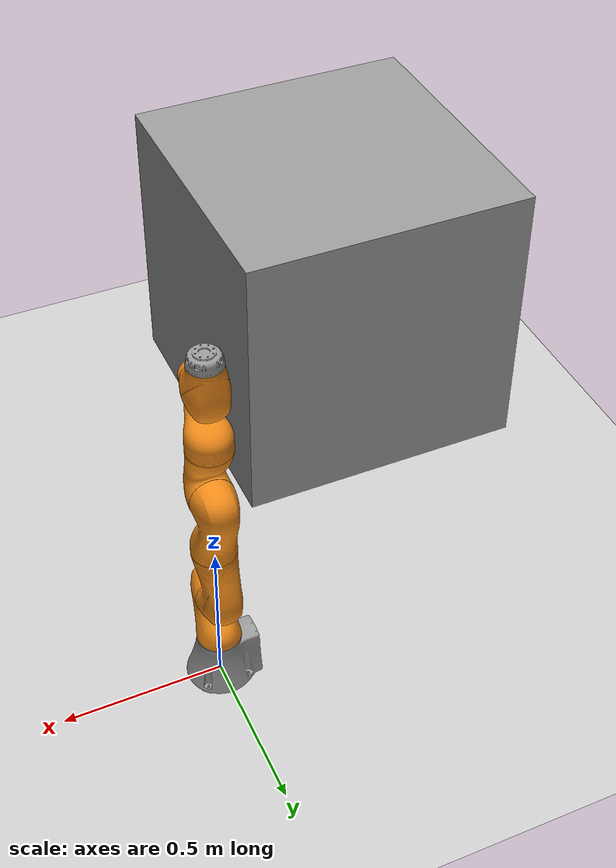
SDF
<sdf version="1.6">
 <world name="default">
  <model name="ground_plane">
   <static>1</static>
   <link name="link">
    <collision name="collision">
     <geometry><plane><normal>0 0 1</normal><size>100 100</size></plane></geometry>
     <surface><friction><ode><mu>100</mu><mu2>50</mu2></ode></friction></surface>
    </collision>
    <visual name="visual">
     <cast_shadows>0</cast_shadows>
     <geometry><plane><normal>0 0 1</normal><size>100 100</size></plane></geometry>
     <material>
      <script><uri>file://media/materials/scripts/gazebo.material</uri><name>Gazebo/Grey</name></script>
     </material>
    </visual>
   </link>
  </model>
  <light name="sun" type="directional">
   <pose>0 0 10 0 -0 0</pose>
   <diffuse>0.8 0.8 0.8 1</diffuse>
   <specular>0.1 0.1 0.1 1</specular>
   <attenuation>
    <range>1000</range>
    <constant>0.9</constant>
    <linear>0.01</linear>
    <quadratic>0.001</quadratic>
   </attenuation>
   <direction>-0.5 0.5 -1</direction>
  </light>
  <gravity>0 0 -9.8</gravity>
  <magnetic_field>6e-06 2.3e-05 -4.2e-05</magnetic_field>
  <atmosphere type="adiabatic"/>
  <physics name="default_physics" default="0" type="ode">
   <max_step_size>0.001</max_step_size>
   <real_time_factor>1</real_time_factor>
   <real_time_update_rate>1000</real_time_update_rate>
  </physics>
  <scene><ambient>0.4 0.4 0.4 1</ambient><background>0.7 0.7 0.7 1</background><shadows>1</shadows></scene>
  <spherical_coordinates>
   <surface_model>EARTH_WGS84</surface_model>
   <latitude_deg>0</latitude_deg>
   <longitude_deg>0</longitude_deg>
   <elevation>0</elevation>
   <heading_deg>0</heading_deg>
  </spherical_coordinates>
  <model name="iiwa">
   <link name="iiwa_link_0">
    <inertial>
     <pose>-0.1 0 0.07 0 -0 0</pose>
     <mass>5</mass>
     <inertia><ixx>0.05</ixx><ixy>0</ixy><ixz>0</ixz><iyy>0.06</iyy><iyz>0</iyz><izz>0.03</izz></inertia>
    </inertial>
    <collision name="iiwa_link_0_collision">
     <geometry>
      <mesh>
       <scale>1 1 1</scale>
       <uri>/home/ruben/cohesion/iiwa_ws/src/iiwa_stack/iiwa_description/meshes/iiwa7/collision/link_0.stl</uri>
      </mesh>
     </geometry>
     <surface><friction><ode><mu>0.2</mu><mu2>0.2</mu2></ode></friction></surface>
    </collision>
    <visual name="iiwa_link_0_visual">
     <geometry>
      <mesh>
       <scale>1 1 1</scale>
       <uri>/home/ruben/cohesion/iiwa_ws/src/iiwa_stack/iiwa_description/meshes/iiwa7/visual/link_0.stl</uri>
      </mesh>
     </geometry>
     <material>
      <script><name>Gazebo/Grey</name><uri>file://media/materials/scripts/gazebo.material</uri></script>
     </material>
    </visual>
   </link>
   <joint name="world_iiwa_joint" type="revolute">
    <child>iiwa_link_0</child>
    <parent>world</parent>
    <axis>
     <limit><lower>0</lower><upper>0</upper></limit>
     <dynamics>
      <damping>0</damping>
      <friction>0</friction>
      <spring_reference>0</spring_reference>
      <spring_stiffness>0</spring_stiffness>
     </dynamics>
     <use_parent_model_frame>1</use_parent_model_frame>
     <xyz>0 0 1</xyz>
    </axis>
   </joint>
   <link name="iiwa_link_1">
    <pose>0 0 0.15 0 -0 0</pose>
    <inertial>
     <pose>0 -0.03 0.12 0 -0 0</pose>
     <mass>4</mass>
     <inertia><ixx>0.1</ixx><ixy>0</ixy><ixz>0</ixz><iyy>0.09</iyy><iyz>0</iyz><izz>0.02</izz></inertia>
    </inertial>
    <collision name="iiwa_link_1_collision">
     <pose>0 0 0.0075 0 -0 0</pose>
     <geometry>
      <mesh>
       <scale>1 1 1</scale>
       <uri>/home/ruben/cohesion/iiwa_ws/src/iiwa_stack/iiwa_description/meshes/iiwa7/collision/link_1.stl</uri>
      </mesh>
     </geometry>
     <surface><friction><ode><mu>0.2</mu><mu2>0.2</mu2></ode></friction></surface>
    </collision>
    <visual name="iiwa_link_1_visual">
     <pose>0 0 0.0075 0 -0 0</pose>
     <geometry>
      <mesh>
       <scale>1 1 1</scale>
       <uri>/home/ruben/cohesion/iiwa_ws/src/iiwa_stack/iiwa_description/meshes/iiwa7/visual/link_1.stl</uri>
      </mesh>
     </geometry>
     <material>
      <script><name>Gazebo/Orange</name><uri>file://media/materials/scripts/gazebo.material</uri></script>
     </material>
    </visual>
   </link>
   <joint name="iiwa_joint_1" type="revolute">
    <child>iiwa_link_1</child>
    <parent>iiwa_link_0</parent>
    <axis>
     <xyz>0 0 1</xyz>
     <limit><lower>-2.96706</lower><upper>2.96706</upper><effort>300</effort><velocity>10</velocity></limit>
     <dynamics>
      <damping>0.5</damping>
      <friction>0</friction>
      <spring_reference>0</spring_reference>
      <spring_stiffness>0</spring_stiffness>
     </dynamics>
     <use_parent_model_frame>1</use_parent_model_frame>
    </axis>
   </joint>
   <link name="iiwa_link_2">
    <pose>0 0 0.34 1.5708 -0 -3.14159</pose>
    <inertial>
     <pose>0.0003 0.059 0.042 0 -0 0</pose>
     <mass>4</mass>
     <inertia><ixx>0.05</ixx><ixy>0</ixy><ixz>0</ixz><iyy>0.018</iyy><iyz>0</iyz><izz>0.044</izz></inertia>
    </inertial>
    <collision name="iiwa_link_2_collision">
     <pose>0 0 -0.006 0 -0 0</pose>
     <geometry>
      <mesh>
       <scale>1 1 1</scale>
       <uri>/home/ruben/cohesion/iiwa_ws/src/iiwa_stack/iiwa_description/meshes/iiwa7/collision/link_2.stl</uri>
      </mesh>
     </geometry>
     <surface><friction><ode><mu>0.2</mu><mu2>0.2</mu2></ode></friction></surface>
    </collision>
    <visual name="iiwa_link_2_visual">
     <pose>0 0 -0.006 0 -0 0</pose>
     <geometry>
      <mesh>
       <scale>1 1 1</scale>
       <uri>/home/ruben/cohesion/iiwa_ws/src/iiwa_stack/iiwa_description/meshes/iiwa7/visual/link_2.stl</uri>
      </mesh>
     </geometry>
     <material>
      <script><name>Gazebo/Orange</name><uri>file://media/materials/scripts/gazebo.material</uri></script>
     </material>
    </visual>
   </link>
   <joint name="iiwa_joint_2" type="revolute">
    <child>iiwa_link_2</child>
    <parent>iiwa_link_1</parent>
    <axis>
     <xyz>0 1 0</xyz>
     <limit><lower>-2.0944</lower><upper>2.0944</upper><effort>300</effort><velocity>10</velocity></limit>
     <dynamics>
      <damping>0.5</damping>
      <friction>0</friction>
      <spring_reference>0</spring_reference>
      <spring_stiffness>0</spring_stiffness>
     </dynamics>
     <use_parent_model_frame>1</use_parent_model_frame>
    </axis>
   </joint>
   <link name="iiwa_link_3">
    <pose>0 -0 0.55 0 -0 0</pose>
    <inertial>
     <pose>0 0.03 0.13 0 -0 0</pose>
     <mass>3</mass>
     <inertia><ixx>0.08</ixx><ixy>0</ixy><ixz>0</ixz><iyy>0.075</iyy><iyz>0</iyz><izz>0.01</izz></inertia>
    </inertial>
    <collision name="iiwa_link_3_collision">
     <pose>0 -0.005 -0.026 0 -0 0</pose>
     <geometry>
      <mesh>
       <scale>1 1 1</scale>
       <uri>/home/ruben/cohesion/iiwa_ws/src/iiwa_stack/iiwa_description/meshes/iiwa7/collision/link_3.stl</uri>
      </mesh>
     </geometry>
     <surface><friction><ode><mu>0.2</mu><mu2>0.2</mu2></ode></friction></surface>
    </collision>
    <visual name="iiwa_link_3_visual">
     <pose>0 -0.005 -0.026 0 -0 0</pose>
     <geometry>
      <mesh>
       <scale>1 1 1</scale>
       <uri>/home/ruben/cohesion/iiwa_ws/src/iiwa_stack/iiwa_description/meshes/iiwa7/visual/link_3.stl</uri>
      </mesh>
     </geometry>
     <material>
      <script><name>Gazebo/Orange</name><uri>file://media/materials/scripts/gazebo.material</uri></script>
     </material>
    </visual>
   </link>
   <joint name="iiwa_joint_3" type="revolute">
    <child>iiwa_link_3</child>
    <parent>iiwa_link_2</parent>
    <axis>
     <xyz>0 0 1</xyz>
     <limit><lower>-2.96706</lower><upper>2.96706</upper><effort>300</effort><velocity>10</velocity></limit>
     <dynamics>
      <damping>0.5</damping>
      <friction>0</friction>
      <spring_reference>0</spring_reference>
      <spring_stiffness>0</spring_stiffness>
     </dynamics>
     <use_parent_model_frame>1</use_parent_model_frame>
    </axis>
   </joint>
   <link name="iiwa_link_4">
    <pose>0 -0 0.74 1.5708 -0 0</pose>
    <inertial>
     <pose>0 0.067 0.034 0 -0 0</pose>
     <mass>2.7</mass>
     <inertia><ixx>0.03</ixx><ixy>0</ixy><ixz>0</ixz><iyy>0.01</iyy><iyz>0</iyz><izz>0.029</izz></inertia>
    </inertial>
    <collision name="iiwa_link_4_collision">
     <geometry>
      <mesh>
       <scale>1 1 1</scale>
       <uri>/home/ruben/cohesion/iiwa_ws/src/iiwa_stack/iiwa_description/meshes/iiwa7/collision/link_4.stl</uri>
      </mesh>
     </geometry>
     <surface><friction><ode><mu>0.2</mu><mu2>0.2</mu2></ode></friction></surface>
    </collision>
    <visual name="iiwa_link_4_visual">
     <geometry>
      <mesh>
       <scale>1 1 1</scale>
       <uri>/home/ruben/cohesion/iiwa_ws/src/iiwa_stack/iiwa_description/meshes/iiwa7/visual/link_4.stl</uri>
      </mesh>
     </geometry>
     <material>
      <script><name>Gazebo/Orange</name><uri>file://media/materials/scripts/gazebo.material</uri></script>
     </material>
    </visual>
   </link>
   <joint name="iiwa_joint_4" type="revolute">
    <child>iiwa_link_4</child>
    <parent>iiwa_link_3</parent>
    <axis>
     <xyz>0 -1 0</xyz>
     <limit><lower>-2.0944</lower><upper>2.0944</upper><effort>300</effort><velocity>10</velocity></limit>
     <dynamics>
      <damping>0.5</damping>
      <friction>0</friction>
      <spring_reference>0</spring_reference>
      <spring_stiffness>0</spring_stiffness>
     </dynamics>
     <use_parent_model_frame>1</use_parent_model_frame>
    </axis>
   </joint>
   <link name="iiwa_link_5">
    <pose>0 0 0.95 0 -0 -3.14159</pose>
    <inertial>
     <pose>0.0001 0.021 0.076 0 -0 0</pose>
     <mass>1.7</mass>
     <inertia><ixx>0.02</ixx><ixy>0</ixy><ixz>0</ixz><iyy>0.018</iyy><iyz>0</iyz><izz>0.005</izz></inertia>
    </inertial>
    <collision name="iiwa_link_5_collision">
     <pose>0 0 -0.026 0 -0 0</pose>
     <geometry>
      <mesh>
       <scale>1 1 1</scale>
       <uri>/home/ruben/cohesion/iiwa_ws/src/iiwa_stack/iiwa_description/meshes/iiwa7/collision/link_5.stl</uri>
      </mesh>
     </geometry>
     <surface><friction><ode><mu>0.2</mu><mu2>0.2</mu2></ode></friction></surface>
    </collision>
    <visual name="iiwa_link_5_visual">
     <pose>0 0 -0.026 0 -0 0</pose>
     <geometry>
      <mesh>
       <scale>1 1 1</scale>
       <uri>/home/ruben/cohesion/iiwa_ws/src/iiwa_stack/iiwa_description/meshes/iiwa7/visual/link_5.stl</uri>
      </mesh>
     </geometry>
     <material>
      <script><name>Gazebo/Orange</name><uri>file://media/materials/scripts/gazebo.material</uri></script>
     </material>
    </visual>
   </link>
   <joint name="iiwa_joint_5" type="revolute">
    <child>iiwa_link_5</child>
    <parent>iiwa_link_4</parent>
    <axis>
     <xyz>0 0 1</xyz>
     <limit><lower>-2.96706</lower><upper>2.96706</upper><effort>300</effort><velocity>10</velocity></limit>
     <dynamics>
      <damping>0.5</damping>
      <friction>0</friction>
      <spring_reference>0</spring_reference>
      <spring_stiffness>0</spring_stiffness>
     </dynamics>
     <use_parent_model_frame>1</use_parent_model_frame>
    </axis>
   </joint>
   <link name="iiwa_link_6">
    <pose>0 -0.0607 1.14 1.5708 -0 -3.14159</pose>
    <inertial>
     <pose>0 0.0006 0.0004 0 -0 0</pose>
     <mass>1.8</mass>
     <inertia><ixx>0.005</ixx><ixy>0</ixy><ixz>0</ixz><iyy>0.0036</iyy><iyz>0</iyz><izz>0.0047</izz></inertia>
    </inertial>
    <collision name="iiwa_link_6_collision">
     <geometry>
      <mesh>
       <scale>1 1 1</scale>
       <uri>/home/ruben/cohesion/iiwa_ws/src/iiwa_stack/iiwa_description/meshes/iiwa7/collision/link_6.stl</uri>
      </mesh>
     </geometry>
     <surface><friction><ode><mu>0.2</mu><mu2>0.2</mu2></ode></friction></surface>
    </collision>
    <visual name="iiwa_link_6_visual">
     <geometry>
      <mesh>
       <scale>1 1 1</scale>
       <uri>/home/ruben/cohesion/iiwa_ws/src/iiwa_stack/iiwa_description/meshes/iiwa7/visual/link_6.stl</uri>
      </mesh>
     </geometry>
     <material>
      <script><name>Gazebo/Orange</name><uri>file://media/materials/scripts/gazebo.material</uri></script>
     </material>
    </visual>
   </link>
   <joint name="iiwa_joint_6" type="revolute">
    <child>iiwa_link_6</child>
    <parent>iiwa_link_5</parent>
    <axis>
     <xyz>0 1 0</xyz>
     <limit><lower>-2.0944</lower><upper>2.0944</upper><effort>300</effort><velocity>10</velocity></limit>
     <dynamics>
      <damping>0.5</damping>
      <friction>0</friction>
      <spring_reference>0</spring_reference>
      <spring_stiffness>0</spring_stiffness>
     </dynamics>
     <use_parent_model_frame>1</use_parent_model_frame>
    </axis>
   </joint>
   <link name="iiwa_link_7">
    <pose>0 0 1.221 0 -0 0</pose>
    <inertial>
     <pose>0 0 0.02 0 -0 0</pose>
     <mass>0.3</mass>
     <inertia><ixx>0.001</ixx><ixy>0</ixy><ixz>0</ixz><iyy>0.001</iyy><iyz>0</iyz><izz>0.001</izz></inertia>
    </inertial>
    <collision name="iiwa_link_7_collision">
     <pose>0 0 -0.0005 0 -0 0</pose>
     <geometry>
      <mesh>
       <scale>1 1 1</scale>
       <uri>/home/ruben/cohesion/iiwa_ws/src/iiwa_stack/iiwa_description/meshes/iiwa7/collision/link_7_basic.stl</uri>
      </mesh>
     </geometry>
     <surface><friction><ode><mu>0.2</mu><mu2>0.2</mu2></ode></friction></surface>
    </collision>
    <visual name="iiwa_link_7_visual">
     <pose>0 0 -0.0005 0 -0 0</pose>
     <geometry>
      <mesh>
       <scale>1 1 1</scale>
       <uri>/home/ruben/cohesion/iiwa_ws/src/iiwa_stack/iiwa_description/meshes/iiwa7/visual/link_7_basic.stl</uri>
      </mesh>
     </geometry>
     <material>
      <script><name>Gazebo/Grey</name><uri>file://media/materials/scripts/gazebo.material</uri></script>
     </material>
    </visual>
   </link>
   <joint name="iiwa_joint_7" type="revolute">
    <child>iiwa_link_7</child>
    <parent>iiwa_link_6</parent>
    <axis>
     <xyz>0 0 1</xyz>
     <limit><lower>-3.05433</lower><upper>3.05433</upper><effort>300</effort><velocity>10</velocity></limit>
     <dynamics>
      <damping>0.5</damping>
      <friction>0</friction>
      <spring_reference>0</spring_reference>
      <spring_stiffness>0</spring_stiffness>
     </dynamics>
     <use_parent_model_frame>1</use_parent_model_frame>
    </axis>
   </joint>
   <static>0</static>
   <plugin name="gazebo_ros_control" filename="libgazebo_ros_control.so">
    <robotNamespace>/iiwa</robotNamespace>
   </plugin>
   <pose>1e-06 -0 1e-06 0 -3e-06 0</pose>
  </model>
  <model name="unit_box">
   <pose>-0.851395 -1.08912 0.5 0 -0 0</pose>
   <link name="link">
    <inertial>
     <mass>1</mass>
     <inertia>
      <ixx>0.166667</ixx>
      <ixy>0</ixy>
      <ixz>0</ixz>
      <iyy>0.166667</iyy>
      <iyz>0</iyz>
      <izz>0.166667</izz>
     </inertia>
    </inertial>
    <collision name="collision"><geometry><box><size>1 1 1</size></box></geometry></collision>
    <visual name="visual">
     <geometry><box><size>1 1 1</size></box></geometry>
     <material>
      <script><name>Gazebo/Grey</name><uri>file://media/materials/scripts/gazebo.material</uri></script>
     </material>
    </visual>
   </link>
  </model>
 </world>
</sdf>
